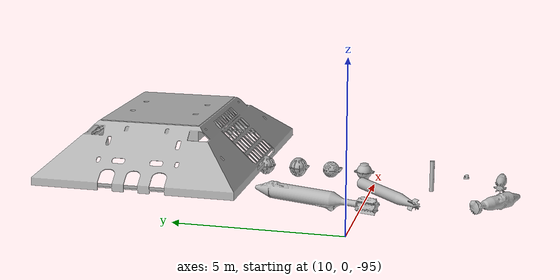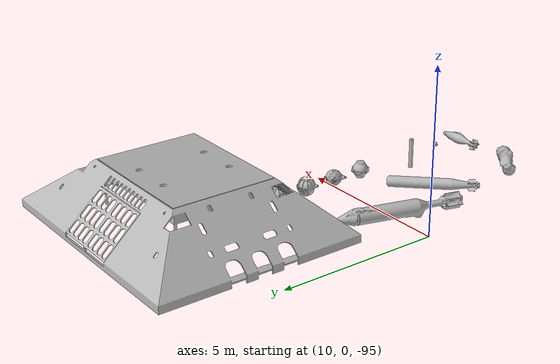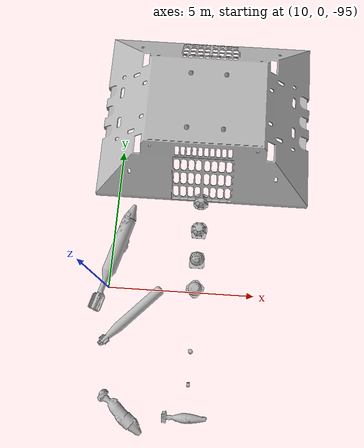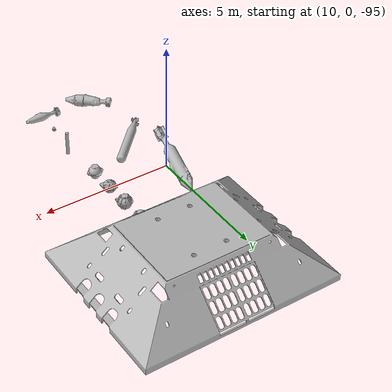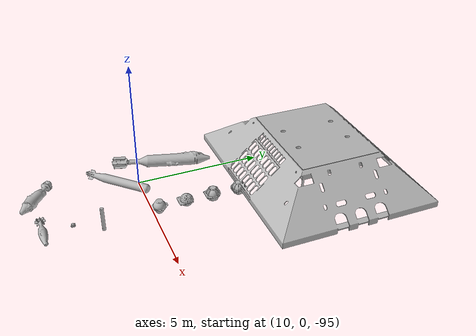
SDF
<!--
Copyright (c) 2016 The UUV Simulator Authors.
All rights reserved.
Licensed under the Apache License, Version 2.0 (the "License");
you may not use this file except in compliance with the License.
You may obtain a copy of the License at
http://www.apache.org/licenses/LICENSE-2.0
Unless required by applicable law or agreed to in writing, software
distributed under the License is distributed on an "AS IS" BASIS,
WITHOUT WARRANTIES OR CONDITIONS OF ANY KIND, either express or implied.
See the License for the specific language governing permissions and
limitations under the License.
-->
<sdf version="1.4">
 <world name="oceans_waves">
  <physics name="default_physics" default="true" type="ode">
   <max_step_size>0.002</max_step_size>
   <real_time_factor>1</real_time_factor>
   <real_time_update_rate>500</real_time_update_rate>
  </physics>
  <scene>
   <ambient>0.01 0.01 0.01 1.0</ambient>
   <sky><clouds><speed>12</speed></clouds></sky>
   <shadows>1</shadows>
  </scene>
  <gravity>0 0 -10</gravity>
  <spherical_coordinates>
   <longitude_deg>76.4334063</longitude_deg>
   <latitude_deg>-40.8458253</latitude_deg>
  </spherical_coordinates>
  <light type="directional" name="sun1">
   <pose>50 0 150 0 0 0</pose>
   <diffuse>1 1 1 1</diffuse>
   <specular>.1 .1 .1 1</specular>
   <direction>0.3 0.3 -1</direction>
   <cast_shadows>false</cast_shadows>
  </light>
  <light type="directional" name="sun_diffuse">
   <pose>-50 0 -150 0 0 0</pose>
   <diffuse>0.6 0.6 0.6 1</diffuse>
   <specular>0 0 0 1</specular>
   <direction>-0.3 -0.3 -1</direction>
   <cast_shadows>false</cast_shadows>
  </light>
  <include><name>torpedo_mk46</name><pose>11 -1 -94 0 0 0.8</pose><uri>model://torpedo_mk46</uri></include>
  <include><name>sonobuoy</name><pose>13 -2 -94 0 0 0</pose><uri>model://sonobuoy</uri></include>
  <include>
   <name>flight_data_recorder</name>
   <pose>13 -3 -94 0 0 0</pose>
   <uri>model://flight_data_recorder</uri>
  </include>
  <include><name>uxo_a</name><pose>13 -4 -94 0 0 0</pose><uri>model://uxo_a</uri></include>
  <include><name>uxo_b</name><pose>11 -4 -94 0 0 -0.7</pose><uri>model://uxo_b</uri></include>
  <include><name>uxo_c</name><pose>10 0 -94 0 0 1.3</pose><uri>model://uxo_c</uri></include>
  <include><name>hardhat_standard</name><pose>13 0 -94 0 0 0</pose><uri>model://hardhat_standard</uri></include>
  <include><name>hardhat_ribbed</name><pose>13 1 -94 0 0 0</pose><uri>model://hardhat_ribbed</uri></include>
  <include>
   <name>hardhat_superribbed</name>
   <pose>13 2 -94 0 0 0</pose>
   <uri>model://hardhat_superribbed</uri>
  </include>
  <include>
   <name>hardhat_octagonal</name>
   <pose>13 3 -94 0 0 0</pose>
   <uri>model://hardhat_octagonal</uri>
  </include>
  <include><name>mbari_mars</name><pose>13 6 -94 0 0 0</pose><uri>model://mbari_mars</uri></include>
 </world>
</sdf>

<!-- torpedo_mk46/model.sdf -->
<sdf version="1.6">
  <model name="torpedo_mk46">
    <static>false</static>
    <link name="base_link">
      <inertial>
        <!-- See python script in model folder for calcs -->
        <mass>40</mass>
        <inertia>
          <ixx>0.53</ixx>
          <ixy>0.0</ixy>
          <ixz>0.0</ixz>
          <iyy>18.0</iyy>
          <iyz>0.0</iyz>
          <izz>18.0</izz>
        </inertia>
      </inertial>
      <visual name="visual">
        <geometry>
           <mesh>
            <uri>file://torpedo_mk46/meshes/torpedo_mk46.dae</uri>
          </mesh>
        </geometry>
      </visual>
      <collision name="collision">
        <pose>0 0 0 0 0 0</pose>
        <geometry>
          <mesh>
            <uri>file://torpedo_mk46/meshes/torpedo_mk46_collision.dae</uri>
          </mesh>
        </geometry>
      </collision>
    </link>
  </model>
</sdf>

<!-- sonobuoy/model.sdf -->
<sdf version="1.6">
  <model name="sonobuoy">
    <static>false</static>
    <link name="base_link">
      <inertial>
        <!-- See python script in model folder for calcs -->
        <mass>5.6</mass>
        <inertia>
          <ixx>0.39</ixx>
          <ixy>0.0</ixy>
          <ixz>0.0</ixz>
          <iyy>0.39</iyy>
          <iyz>0.0</iyz>
          <izz>0.012</izz>
        </inertia>
      </inertial>
      <visual name="visual">
        <geometry>
           <mesh>
            <uri>file://sonobuoy/meshes/sonobuoy.dae</uri>
          </mesh>
        </geometry>
      </visual>
      <collision name="collision">
        <pose>0 0 0 0 0 0</pose>
        <geometry>
          <mesh>
            <uri>file://sonobuoy/meshes/sonobuoy_collision.dae</uri>
          </mesh>
        </geometry>
      </collision>
    </link>
  </model>
</sdf>

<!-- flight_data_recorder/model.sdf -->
<sdf version="1.6">
  <model name="flight_data_recorder">
    <static>false</static>
    <link name="base_link">
      <inertial>
        <mass>1</mass>
        <inertia>
          <ixx>0.04</ixx>
          <ixy>0.0</ixy>
          <ixz>0.0</ixz>
          <iyy>0.04</iyy>
          <iyz>0.0</iyz>
          <izz>0.04</izz>
        </inertia>
      </inertial>
      <visual name="visual">
        <geometry>
           <mesh>
            <scale> 2.0 2.0 2.0 </scale>
            <uri>file://flight_data_recorder/meshes/flight_data_recorder.dae</uri>
          </mesh>
        </geometry>
      </visual>
      <collision name="collision">

        <pose>0 0 0 0 0 0</pose>
        <geometry>
          <mesh>
            <scale> 2.0 2.0 2.0 </scale>
            <uri>file://flight_data_recorder/meshes/flight_data_recorder_collision.dae</uri>
          </mesh>
        </geometry>
      </collision>
    </link>
  </model>
</sdf>

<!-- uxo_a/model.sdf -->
<sdf version="1.6">
  <model name="uxo_a">
    <static>false</static>
    <link name="base_link">
      <inertial>
        <mass>25</mass>
        <inertia>
          <ixx>0.12</ixx>
          <ixy>0.0</ixy>
          <ixz>0.0</ixz>
          <iyy>2.6</iyy>
          <iyz>0.0</iyz>
          <izz>2.6</izz>
        </inertia>
      </inertial>
      <visual name="visual">
        <geometry>
           <mesh>
            <uri>file://uxo_a/meshes/uxo_a.dae</uri>
          </mesh>
        </geometry>
      </visual>
      <collision name="collision">
        <pose>0 0 0 0 0 0</pose>
        <geometry>
          <mesh>
            <uri>file://uxo_a/meshes/uxo_a_collision.dae</uri>
          </mesh>
        </geometry>
      </collision>
    </link>
  </model>
</sdf>

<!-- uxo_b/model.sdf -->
<sdf version="1.6">
  <model name="uxo_b">
    <static>false</static>
    <link name="base_link">
      <inertial>
        <mass>15</mass>
        <inertia>
          <ixx>0.17</ixx>
          <ixy>0.0</ixy>
          <ixz>0.0</ixz>
          <iyy>1.9</iyy>
          <iyz>0.0</iyz>
          <izz>1.9</izz>
        </inertia>
      </inertial>
      <visual name="visual">
        <geometry>
           <mesh>
            <uri>file://uxo_b/meshes/uxo_b.dae</uri>
          </mesh>
        </geometry>
      </visual>
      <collision name="collision">
        <pose>0 0 0 0 0 0</pose>
        <geometry>
          <mesh>
            <uri>file://uxo_b/meshes/uxo_b_collision.dae</uri>
          </mesh>
        </geometry>
      </collision>
    </link>
  </model>
</sdf>

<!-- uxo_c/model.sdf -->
<sdf version="1.6">
  <model name="uxo_c">
    <static>false</static>
    <link name="base_link">
      <inertial>
        <pose>0.5 0 0 0 0 0</pose>
        <mass>33.0</mass>
        <inertia>
          <ixx>0.67</ixx>
          <ixy>0.0</ixy>
          <ixz>0.0</ixz>
          <iyy>19</iyy>
          <iyz>0.0</iyz>
          <izz>19</izz>
        </inertia>
      </inertial>
      <visual name="visual">
        <geometry>
           <mesh>
            <uri>file://uxo_c/meshes/uxo_c.dae</uri>
          </mesh>
        </geometry>
      </visual>
      <collision name="collision">
        <pose>0 0 0 0 0 0</pose>
        <geometry>
          <mesh>
            <uri>file://uxo_c/meshes/uxo_c_collision.dae</uri>
          </mesh>
        </geometry>
      </collision>
    </link>
  </model>
</sdf>

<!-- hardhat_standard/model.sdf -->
<sdf version="1.6">
  <model name="hardhat_standard">
    <static>false</static>
    <link name="base_link">
      <inertial>
        <mass>17.7</mass>
        <inertia>
          <ixx>0.55</ixx>
          <ixy>0.0</ixy>
          <ixz>0.0</ixz>
          <iyy>0.55</iyy>
          <iyz>0.0</iyz>
          <izz>0.55</izz>
        </inertia>
      </inertial>
      <visual name="visual">
        <geometry>
           <mesh>
            <uri>file://hardhat_standard/meshes/hardhat_standard.dae</uri>
          </mesh>
        </geometry>
      </visual>
      <collision name="collision">
        <pose>0 0 0 0 0 0</pose>
        <geometry>
          <mesh>
	    <uri>file://hardhat_standard/meshes/hardhat_standard_collision.dae</uri>
          </mesh>
        </geometry>
      </collision>
    </link>
  </model>
</sdf>

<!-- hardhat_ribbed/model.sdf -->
<sdf version="1.6">
  <model name="hardhat_ribbed">
    <static>false</static>
    <link name="base_link">
      <inertial>
        <mass>17.7</mass>
        <inertia>
          <ixx>0.55</ixx>
          <ixy>0.0</ixy>
          <ixz>0.0</ixz>
          <iyy>0.55</iyy>
          <iyz>0.0</iyz>
          <izz>0.55</izz>
        </inertia>
      </inertial>
      <visual name="visual">
        <geometry>
           <mesh>
            <uri>file://hardhat_ribbed/meshes/hardhat_ribbed.dae</uri>
          </mesh>
        </geometry>
      </visual>
      <collision name="collision">
        <pose>0 0 0 0 0 0</pose>
        <geometry>
          <mesh>
	    <uri>file://hardhat_ribbed/meshes/hardhat_ribbed_collision.dae</uri>
          </mesh>
        </geometry>
      </collision>
    </link>
  </model>
</sdf>

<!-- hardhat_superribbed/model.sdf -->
<sdf version="1.6">
  <model name="hardhat_superribbed">
    <static>false</static>
    <link name="base_link">
      <inertial>
        <mass>17.7</mass>
        <inertia>
          <ixx>0.55</ixx>
          <ixy>0.0</ixy>
          <ixz>0.0</ixz>
          <iyy>0.55</iyy>
          <iyz>0.0</iyz>
          <izz>0.55</izz>
        </inertia>
      </inertial>
      <visual name="visual">
        <geometry>
           <mesh>
            <uri>file://hardhat_superribbed/meshes/hardhat_superribbed.dae</uri>
          </mesh>
        </geometry>
      </visual>
      <collision name="collision">
        <pose>0 0 0 0 0 0</pose>
        <geometry>
          <mesh>
	    <uri>file://hardhat_superribbed/meshes/hardhat_superribbed_collision.dae</uri>
          </mesh>
        </geometry>
      </collision>
    </link>
  </model>
</sdf>

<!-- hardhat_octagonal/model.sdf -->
<sdf version="1.6">
  <model name="hardhat_octagonal">
    <static>false</static>
    <link name="base_link">
      <inertial>
        <mass>17.7</mass>
        <inertia>
          <ixx>0.55</ixx>
          <ixy>0.0</ixy>
          <ixz>0.0</ixz>
          <iyy>0.55</iyy>
          <iyz>0.0</iyz>
          <izz>0.55</izz>
        </inertia>
      </inertial>
      <visual name="visual">
        <geometry>
           <mesh>
            <uri>file://hardhat_octagonal/meshes/hardhat_octagonal.dae</uri>
          </mesh>
        </geometry>
      </visual>
      <collision name="collision">
        <pose>0 0 0 0 0 0</pose>
        <geometry>
          <mesh>
	    <uri>file://hardhat_octagonal/meshes/hardhat_octagonal_collision.dae</uri>
          </mesh>
        </geometry>
      </collision>
    </link>
  </model>
</sdf>

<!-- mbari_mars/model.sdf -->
<sdf version="1.6">
  <model name="mbari_mars">
    <static>false</static>
    <link name="base_link">
      <inertial>
        <mass>100</mass>
        <inertia>
          <ixx>5</ixx>
          <ixy>0.0</ixy>
          <ixz>0.0</ixz>
          <iyy>5</iyy>
          <iyz>0.0</iyz>
          <izz>5</izz>
        </inertia>
      </inertial>
      <visual name="visual">
        <geometry>
           <mesh>
            <uri>file://mbari_mars/meshes/mbari_mars.dae</uri>
          </mesh>
        </geometry>
      </visual>
      <collision name="collision">
        <pose>0 0 0 0 0 0</pose>
        <geometry>
          <mesh>
	    <uri>file://mbari_mars/meshes/mbari_mars_collision.dae</uri>
          </mesh>
        </geometry>
      </collision>
    </link>
  </model>
</sdf>
